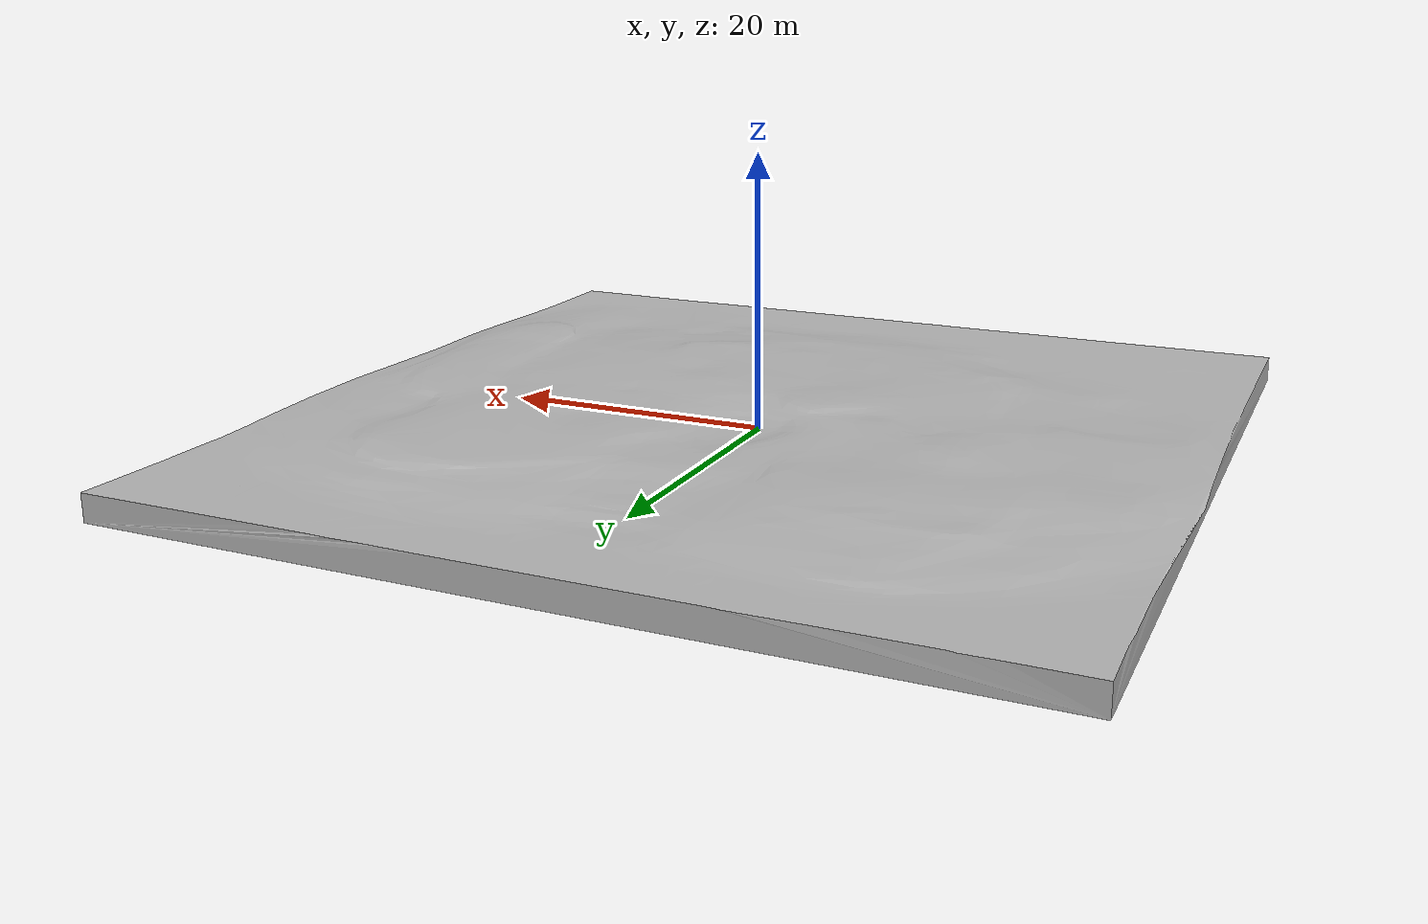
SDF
<?xml version="1.0"?>
<sdf version="1.5">
  <model name="autonav_mesh">
    <static>true</static>
    <link name="link">
      <collision name="collision">
        <geometry>
          <mesh>
            <uri>model://autonav_mesh/meshes/autonav_world.dae</uri>
            <scale>1 1 1</scale>
          </mesh>
        </geometry>
        <surface>
          <friction>
            <ode>
              <mu>100</mu>
              <mu2>50</mu2>
            </ode>
          </friction>
        </surface>
      </collision>
      <visual name="visual">
        <cast_shadows>false</cast_shadows>
        <geometry>
          <mesh>
            <uri>model://autonav_mesh/meshes/autonav_world.dae</uri>
            <scale>1 1 1</scale>
          </mesh>
        </geometry>
        <material>
          <script>
            <uri>model://urdf/gazebo.material</uri>
            <name>Gazebo/Texture_autonav</name>
          </script>
        </material>
      </visual>
    </link>
  </model>
</sdf>
